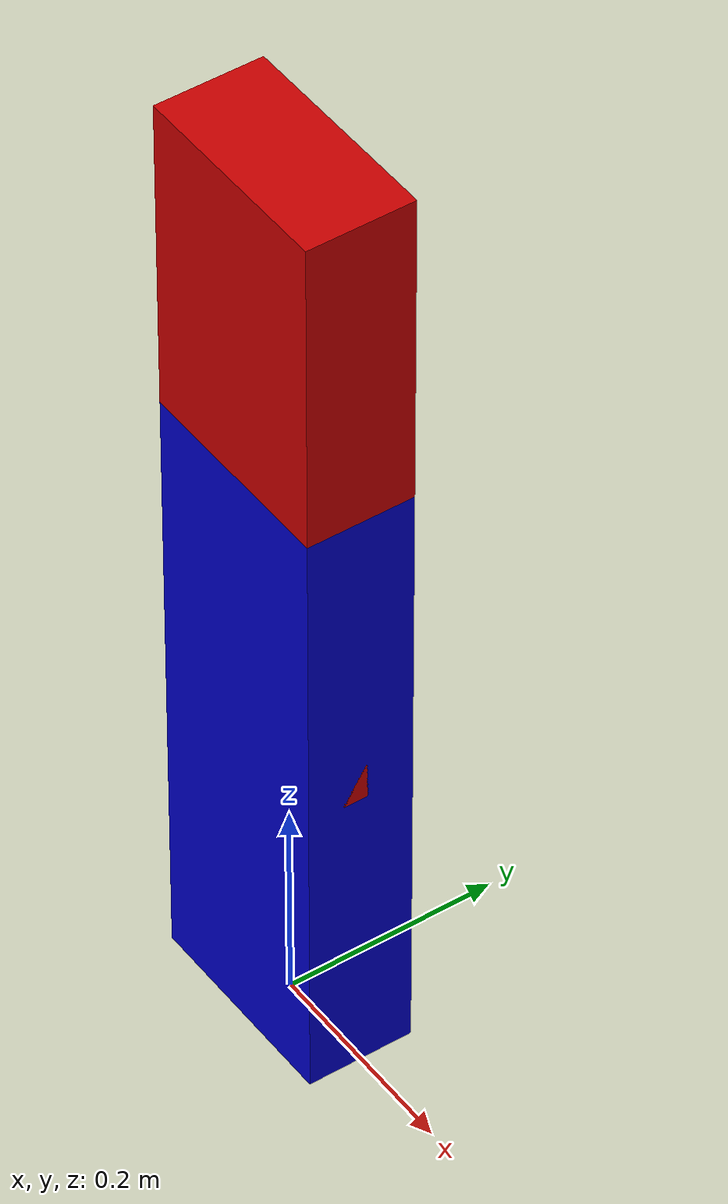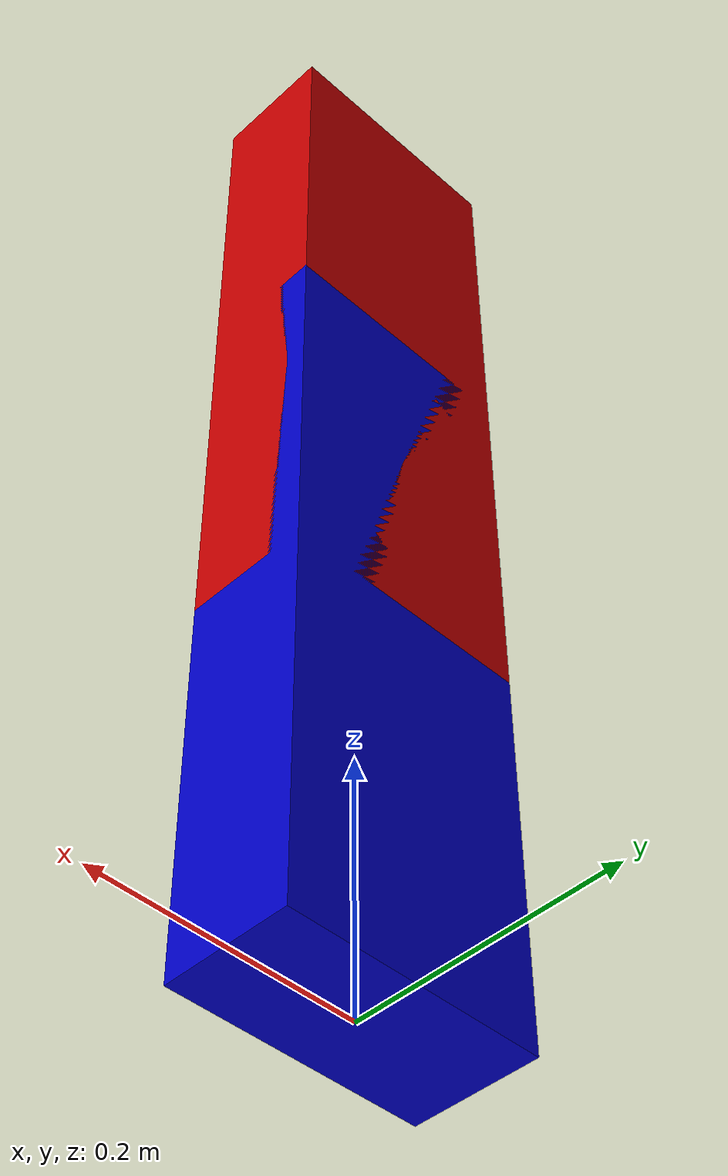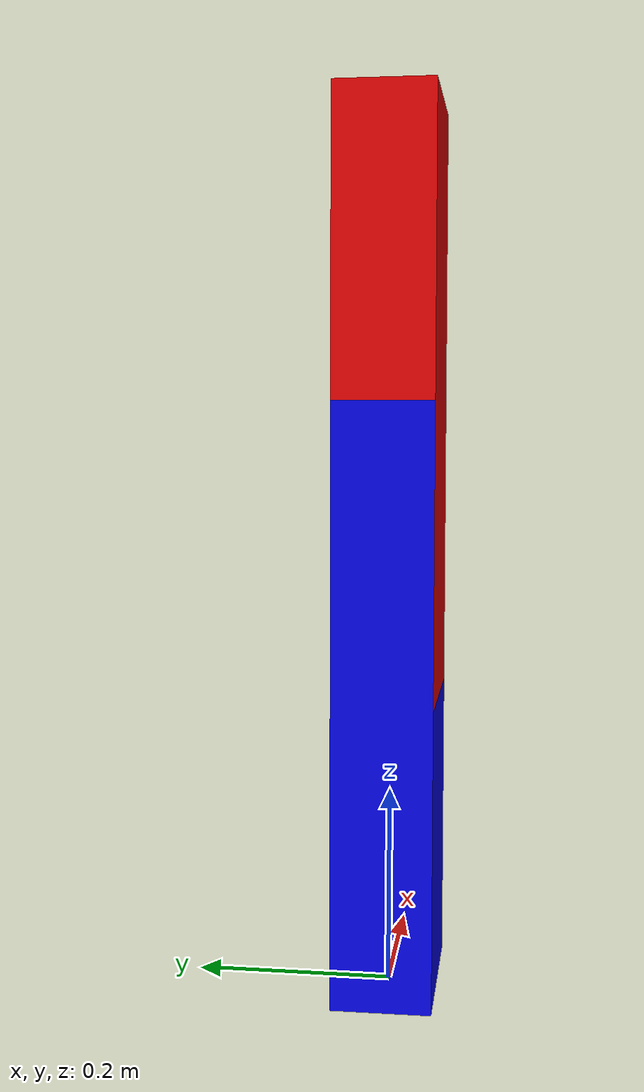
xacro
<?xml version="1.0"?>
<robot xmlns:xacro="http://www.ros.org/wiki/xacro" name="arm2">

  <xacro:property name="width" value=".2" />
  <xacro:property name="length" value=".6" />
  <xacro:property name="pi" value="3.1415" />

  <xacro:macro name="default_inertial" params="mass">
    <inertial>
        <origin xyz="0 0 0" rpy="0 0 0" />
        <mass value="${mass}" />
        <inertia ixx="1.0" ixy="0.0" ixz="0.0"
           iyy="1.0" iyz="0.0"
           izz="1.0" />
    </inertial>
  </xacro:macro>

  <link name="base_link"/>

  <link name="first_link">
    <visual>
      <origin xyz="0 0 0" rpy="0 0 0" />
      <geometry>
         <box size="0.2 0.1 ${length}"/>
      </geometry>
      <material name="blue">
        <color rgba="0 0 .8 1"/>
      </material>
    </visual>
    <collision>
      <origin xyz="0 0 0" rpy="0 0 0" />
      <geometry>
         <box size="${length} .2 .1"/>
      </geometry>
    </collision>
    <xacro:default_inertial mass="10"/>
  </link>

  <link name="second_link">
    <visual>
      <origin xyz="0 0 ${-length/2}" rpy="0 0 0" />
      <geometry>
         <box size="0.2 0.1 ${length}"/>
      </geometry>
      <material name="red">
        <color rgba="0.8 0 0 1"/>
      </material>
    </visual>
    <collision>
      <origin xyz="0 0 0" rpy="0 0 0" />
      <geometry>
         <box size=".2 .1 ${length}"/>
      </geometry>
    </collision>
    <xacro:default_inertial mass="10"/>
  </link>

  <joint name="joint_base_first" type="revolute">
    <parent link="base_link"/>
    <child link="first_link"/>
    <origin xyz="0 0 ${length/2}" rpy="0 0 0" />
    <axis xyz="1 0 0" />
    <limit lower="-${pi}" upper="${pi}" effort="10" velocity="1.0"/>
  </joint>

  <joint name="joint_first_second" type="revolute">
    <parent link="first_link"/>
    <child link="second_link"/>
    <origin xyz="0 0 ${length}" rpy="0 0 0" />
    <axis xyz="1 0 0" />
    <limit lower="-${pi}" upper="${pi}" effort="10" velocity="1.0"/>
  </joint>
</robot>
